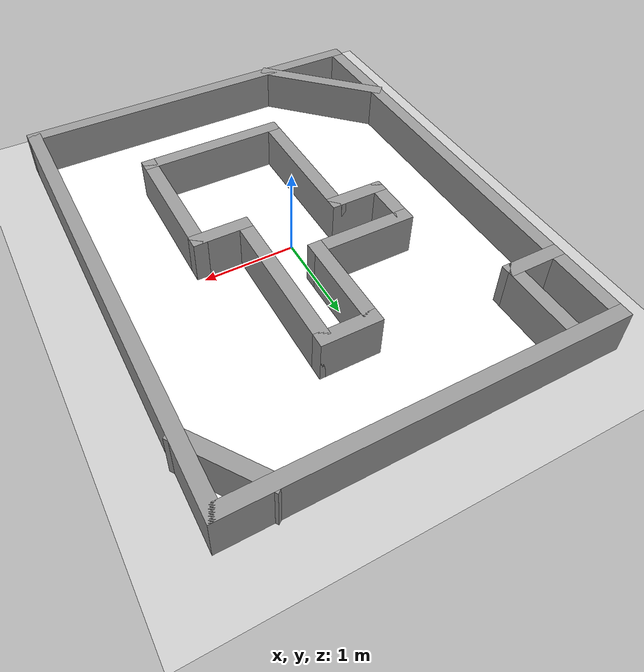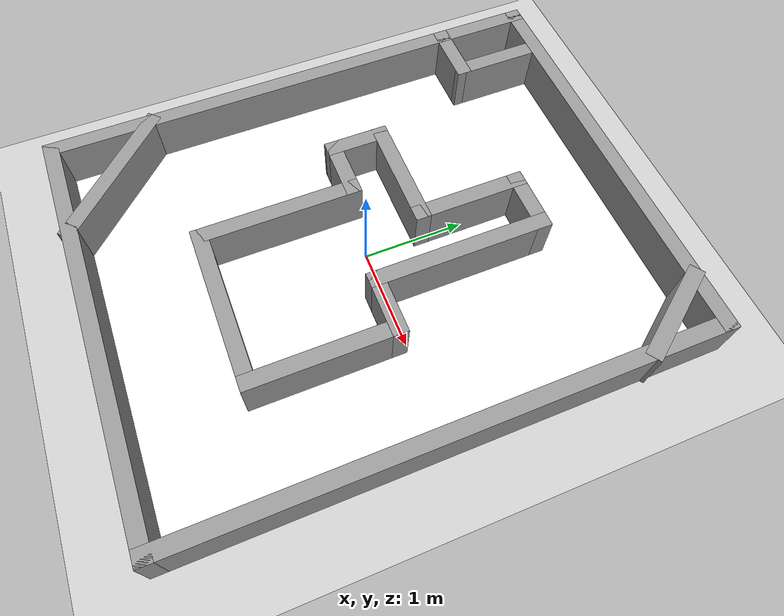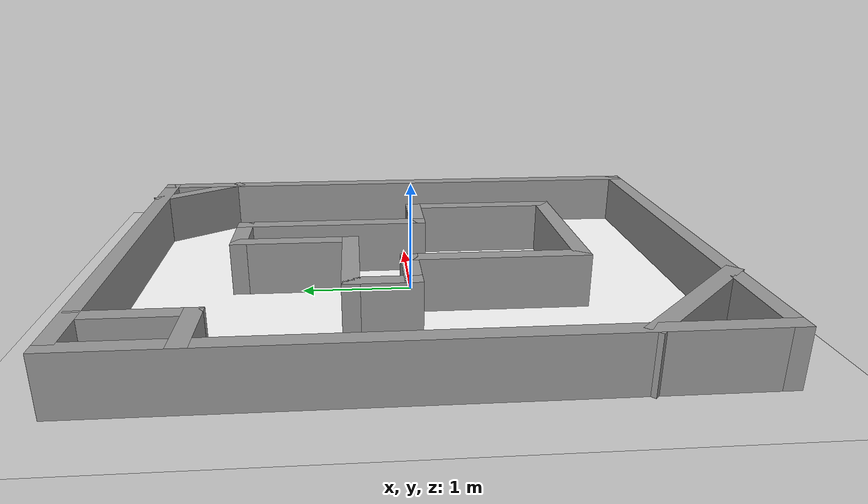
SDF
<?xml version='1.0'?>
<sdf version='1.6'>
  <world name='yaofang_world'>
    <include>
      <uri>model://sun</uri>
    </include>

    <include>
      <uri>model://ground_plane</uri>
    </include>

    <scene>
      <shadows>false</shadows>
      <ambient>0.8 0.8 0.8 1</ambient>
      <background>0.85 0.85 0.85 1</background>
    </scene>

    <physics type='ode'>
      <max_step_size>0.001</max_step_size>
      <real_time_update_rate>500.0</real_time_update_rate>
    </physics>

    <include>
      <uri>model://yaofang</uri>
      <pose>0 0 0 0 0 0</pose>
    </include>
  </world>
</sdf>

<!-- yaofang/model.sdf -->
<sdf version='1.7'>
  <model name='yaofang'>
    <pose>1.99923 2.54773 0 0 -0 0</pose>
    <link name='Wall_0'>
      <collision name='Wall_0_Collision'>
        <geometry>
          <box>
            <size>4.15 0.15 0.5</size>
          </box>
        </geometry>
        <pose>0 0 0.25 0 -0 0</pose>
      </collision>
      <visual name='Wall_0_Visual'>
        <pose>0 0 0.25 0 -0 0</pose>
        <geometry>
          <box>
            <size>4.15 0.15 0.5</size>
          </box>
        </geometry>
        <material>
          <script>
            <uri>file://media/materials/scripts/gazebo.material</uri>
            <name>Gazebo/Grey</name>
          </script>
          <ambient>1 1 1 1</ambient>
        </material>
        <meta>
          <layer>0</layer>
        </meta>
      </visual>
      <pose>0.000769 2.55227 0 0 -0 0</pose>
    </link>
    <link name='Wall_1'>
      <collision name='Wall_1_Collision'>
        <geometry>
          <box>
            <size>5.25 0.15 0.5</size>
          </box>
        </geometry>
        <pose>0 0 0.25 0 -0 0</pose>
      </collision>
      <visual name='Wall_1_Visual'>
        <pose>0 0 0.25 0 -0 0</pose>
        <geometry>
          <box>
            <size>5.25 0.15 0.5</size>
          </box>
        </geometry>
        <material>
          <script>
            <uri>file://media/materials/scripts/gazebo.material</uri>
            <name>Gazebo/Grey</name>
          </script>
          <ambient>1 1 1 1</ambient>
        </material>
        <meta>
          <layer>0</layer>
        </meta>
      </visual>
      <pose>2.00077 0.002269 0 0 -0 -1.5708</pose>
    </link>
    <link name='Wall_10'>
      <collision name='Wall_10_Collision'>
        <geometry>
          <box>
            <size>1 0.15 0.5</size>
          </box>
        </geometry>
        <pose>0 0 0.25 0 -0 0</pose>
      </collision>
      <visual name='Wall_10_Visual'>
        <pose>0 0 0.25 0 -0 0</pose>
        <geometry>
          <box>
            <size>1 0.15 0.5</size>
          </box>
        </geometry>
        <material>
          <script>
            <uri>file://media/materials/scripts/gazebo.material</uri>
            <name>Gazebo/Grey</name>
          </script>
          <ambient>1 1 1 1</ambient>
        </material>
        <meta>
          <layer>0</layer>
        </meta>
      </visual>
      <pose>-1.49916 2.10427 0 0 -0 -1.57097</pose>
    </link>
    <link name='Wall_11'>
      <collision name='Wall_11_Collision'>
        <geometry>
          <box>
            <size>0.65 0.15 0.5</size>
          </box>
        </geometry>
        <pose>0 0 0.25 0 -0 0</pose>
      </collision>
      <visual name='Wall_11_Visual'>
        <pose>0 0 0.25 0 -0 0</pose>
        <geometry>
          <box>
            <size>0.65 0.15 0.5</size>
          </box>
        </geometry>
        <material>
          <script>
            <uri>file://media/materials/scripts/gazebo.material</uri>
            <name>Gazebo/Grey</name>
          </script>
          <ambient>1 1 1 1</ambient>
        </material>
        <meta>
          <layer>0</layer>
        </meta>
      </visual>
      <pose>-1.74923 1.67927 0 0 -0 3.14159</pose>
    </link>
    <link name='Wall_13'>
      <collision name='Wall_13_Collision'>
        <geometry>
          <box>
            <size>1.65 0.15 0.5</size>
          </box>
        </geometry>
        <pose>0 0 0.25 0 -0 0</pose>
      </collision>
      <visual name='Wall_13_Visual'>
        <pose>0 0 0.25 0 -0 0</pose>
        <geometry>
          <box>
            <size>1.65 0.15 0.5</size>
          </box>
        </geometry>
        <material>
          <script>
            <uri>file://media/materials/scripts/gazebo.material</uri>
            <name>Gazebo/Grey</name>
          </script>
          <ambient>1 1 1 1</ambient>
        </material>
        <meta>
          <layer>0</layer>
        </meta>
      </visual>
      <pose>0.250769 -1.44773 0 0 -0 0</pose>
    </link>
    <link name='Wall_14'>
      <collision name='Wall_14_Collision'>
        <geometry>
          <box>
            <size>1.50015 0.15 0.5</size>
          </box>
        </geometry>
        <pose>0 0 0.25 0 -0 0</pose>
      </collision>
      <visual name='Wall_14_Visual'>
        <pose>0 0 0.25 0 -0 0</pose>
        <geometry>
          <box>
            <size>1.50015 0.15 0.5</size>
          </box>
        </geometry>
        <material>
          <script>
            <uri>file://media/materials/scripts/gazebo.material</uri>
            <name>Gazebo/Grey</name>
          </script>
          <ambient>1 1 1 1</ambient>
        </material>
        <meta>
          <layer>0</layer>
        </meta>
      </visual>
      <pose>1.00077 -0.772731 0 0 -0 1.5708</pose>
    </link>
    <link name='Wall_15'>
      <collision name='Wall_15_Collision'>
        <geometry>
          <box>
            <size>0.65 0.15 0.5</size>
          </box>
        </geometry>
        <pose>0 0 0.25 0 -0 0</pose>
      </collision>
      <visual name='Wall_15_Visual'>
        <pose>0 0 0.25 0 -0 0</pose>
        <geometry>
          <box>
            <size>0.65 0.15 0.5</size>
          </box>
        </geometry>
        <material>
          <script>
            <uri>file://media/materials/scripts/gazebo.material</uri>
            <name>Gazebo/Grey</name>
          </script>
          <ambient>1 1 1 1</ambient>
        </material>
        <meta>
          <layer>0</layer>
        </meta>
      </visual>
      <pose>0.750769 -0.097731 0 0 -0 3.14159</pose>
    </link>
    <link name='Wall_16'>
      <collision name='Wall_16_Collision'>
        <geometry>
          <box>
            <size>1.8 0.15 0.5</size>
          </box>
        </geometry>
        <pose>0 0 0.25 0 -0 0</pose>
      </collision>
      <visual name='Wall_16_Visual'>
        <pose>0 0 0.25 0 -0 0</pose>
        <geometry>
          <box>
            <size>1.8 0.15 0.5</size>
          </box>
        </geometry>
        <material>
          <script>
            <uri>file://media/materials/scripts/gazebo.material</uri>
            <name>Gazebo/Grey</name>
          </script>
          <ambient>1 1 1 1</ambient>
        </material>
        <meta>
          <layer>0</layer>
        </meta>
      </visual>
      <pose>0.500769 0.727269 0 0 -0 1.5708</pose>
    </link>
    <link name='Wall_17'>
      <collision name='Wall_17_Collision'>
        <geometry>
          <box>
            <size>0.65 0.15 0.5</size>
          </box>
        </geometry>
        <pose>0 0 0.25 0 -0 0</pose>
      </collision>
      <visual name='Wall_17_Visual'>
        <pose>0 0 0.25 0 -0 0</pose>
        <geometry>
          <box>
            <size>0.65 0.15 0.5</size>
          </box>
        </geometry>
        <material>
          <script>
            <uri>file://media/materials/scripts/gazebo.material</uri>
            <name>Gazebo/Grey</name>
          </script>
          <ambient>1 1 1 1</ambient>
        </material>
        <meta>
          <layer>0</layer>
        </meta>
      </visual>
      <pose>0.250769 1.55227 0 0 -0 3.14159</pose>
    </link>
    <link name='Wall_18'>
      <collision name='Wall_18_Collision'>
        <geometry>
          <box>
            <size>1.15 0.15 0.5</size>
          </box>
        </geometry>
        <pose>0 0 0.25 0 -0 0</pose>
      </collision>
      <visual name='Wall_18_Visual'>
        <pose>0 0 0.25 0 -0 0</pose>
        <geometry>
          <box>
            <size>1.15 0.15 0.5</size>
          </box>
        </geometry>
        <material>
          <script>
            <uri>file://media/materials/scripts/gazebo.material</uri>
            <name>Gazebo/Grey</name>
          </script>
          <ambient>1 1 1 1</ambient>
        </material>
        <meta>
          <layer>0</layer>
        </meta>
      </visual>
      <pose>0.000769 1.05227 0 0 -0 -1.5708</pose>
    </link>
    <link name='Wall_19'>
      <collision name='Wall_19_Collision'>
        <geometry>
          <box>
            <size>1.15 0.15 0.5</size>
          </box>
        </geometry>
        <pose>0 0 0.25 0 -0 0</pose>
      </collision>
      <visual name='Wall_19_Visual'>
        <pose>0 0 0.25 0 -0 0</pose>
        <geometry>
          <box>
            <size>1.15 0.15 0.5</size>
          </box>
        </geometry>
        <material>
          <script>
            <uri>file://media/materials/scripts/gazebo.material</uri>
            <name>Gazebo/Grey</name>
          </script>
          <ambient>1 1 1 1</ambient>
        </material>
        <meta>
          <layer>0</layer>
        </meta>
      </visual>
      <pose>-0.499231 0.552269 0 0 -0 3.14159</pose>
    </link>
    <link name='Wall_2'>
      <collision name='Wall_2_Collision'>
        <geometry>
          <box>
            <size>4.15 0.15 0.5</size>
          </box>
        </geometry>
        <pose>0 0 0.25 0 -0 0</pose>
      </collision>
      <visual name='Wall_2_Visual'>
        <pose>0 0 0.25 0 -0 0</pose>
        <geometry>
          <box>
            <size>4.15 0.15 0.5</size>
          </box>
        </geometry>
        <material>
          <script>
            <uri>file://media/materials/scripts/gazebo.material</uri>
            <name>Gazebo/Grey</name>
          </script>
          <ambient>1 1 1 1</ambient>
        </material>
        <meta>
          <layer>0</layer>
        </meta>
      </visual>
      <pose>0.000769 -2.54773 0 0 -0 3.14159</pose>
    </link>
    <link name='Wall_20'>
      <collision name='Wall_20_Collision'>
        <geometry>
          <box>
            <size>0.65 0.15 0.5</size>
          </box>
        </geometry>
        <pose>0 0 0.25 0 -0 0</pose>
      </collision>
      <visual name='Wall_20_Visual'>
        <pose>0 0 0.25 0 -0 0</pose>
        <geometry>
          <box>
            <size>0.65 0.15 0.5</size>
          </box>
        </geometry>
        <material>
          <script>
            <uri>file://media/materials/scripts/gazebo.material</uri>
            <name>Gazebo/Grey</name>
          </script>
          <ambient>1 1 1 1</ambient>
        </material>
        <meta>
          <layer>0</layer>
        </meta>
      </visual>
      <pose>-0.999231 0.302269 0 0 -0 -1.5708</pose>
    </link>
    <link name='Wall_21'>
      <collision name='Wall_21_Collision'>
        <geometry>
          <box>
            <size>0.65 0.15 0.5</size>
          </box>
        </geometry>
        <pose>0 0 0.25 0 -0 0</pose>
      </collision>
      <visual name='Wall_21_Visual'>
        <pose>0 0 0.25 0 -0 0</pose>
        <geometry>
          <box>
            <size>0.65 0.15 0.5</size>
          </box>
        </geometry>
        <material>
          <script>
            <uri>file://media/materials/scripts/gazebo.material</uri>
            <name>Gazebo/Grey</name>
          </script>
          <ambient>1 1 1 1</ambient>
        </material>
        <meta>
          <layer>0</layer>
        </meta>
      </visual>
      <pose>-0.749231 0.052269 0 0 -0 0</pose>
    </link>
    <link name='Wall_22'>
      <collision name='Wall_22_Collision'>
        <geometry>
          <box>
            <size>1.65 0.15 0.5</size>
          </box>
        </geometry>
        <pose>0 0 0.25 0 -0 0</pose>
      </collision>
      <visual name='Wall_22_Visual'>
        <pose>0 0 0.25 0 -0 0</pose>
        <geometry>
          <box>
            <size>1.65 0.15 0.5</size>
          </box>
        </geometry>
        <material>
          <script>
            <uri>file://media/materials/scripts/gazebo.material</uri>
            <name>Gazebo/Grey</name>
          </script>
          <ambient>1 1 1 1</ambient>
        </material>
        <meta>
          <layer>0</layer>
        </meta>
      </visual>
      <pose>-0.499231 -0.697731 0 0 -0 -1.5708</pose>
    </link>
    <link name='Wall_3'>
      <collision name='Wall_3_Collision'>
        <geometry>
          <box>
            <size>5.25 0.15 0.5</size>
          </box>
        </geometry>
        <pose>0 0 0.25 0 -0 0</pose>
      </collision>
      <visual name='Wall_3_Visual'>
        <pose>0 0 0.25 0 -0 0</pose>
        <geometry>
          <box>
            <size>5.25 0.15 0.5</size>
          </box>
        </geometry>
        <material>
          <script>
            <uri>file://media/materials/scripts/gazebo.material</uri>
            <name>Gazebo/Grey</name>
          </script>
          <ambient>1 1 1 1</ambient>
        </material>
        <meta>
          <layer>0</layer>
        </meta>
      </visual>
      <pose>-1.99923 0.002269 0 0 -0 1.5708</pose>
    </link>
    <link name='Wall_6'>
      <collision name='Wall_6_Collision'>
        <geometry>
          <box>
            <size>1.56421 0.15 0.5</size>
          </box>
        </geometry>
        <pose>0 0 0.25 0 -0 0</pose>
      </collision>
      <visual name='Wall_6_Visual'>
        <pose>0 0 0.25 0 -0 0</pose>
        <geometry>
          <box>
            <size>1.56421 0.15 0.5</size>
          </box>
        </geometry>
        <material>
          <script>
            <uri>file://media/materials/scripts/gazebo.material</uri>
            <name>Gazebo/Grey</name>
          </script>
          <ambient>1 1 1 1</ambient>
        </material>
        <meta>
          <layer>0</layer>
        </meta>
      </visual>
      <pose>-1.49923 -2.04773 0 0 -0 -0.785398</pose>
    </link>
    <link name='Wall_8'>
      <collision name='Wall_8_Collision'>
        <geometry>
          <box>
            <size>1.01676 0.15 0.5</size>
          </box>
        </geometry>
        <pose>0 0 0.25 0 -0 0</pose>
      </collision>
      <visual name='Wall_8_Visual'>
        <pose>0 0 0.25 0 -0 0</pose>
        <geometry>
          <box>
            <size>1.01676 0.15 0.5</size>
          </box>
        </geometry>
        <material>
          <script>
            <uri>file://media/materials/scripts/gazebo.material</uri>
            <name>Gazebo/Grey</name>
          </script>
          <ambient>1 1 1 1</ambient>
        </material>
        <meta>
          <layer>0</layer>
        </meta>
      </visual>
      <pose>1.75077 2.19527 0 0 -0 -0.955912</pose>
    </link>
    <link name='Floor_0'>
      <collision name='Floor_0_Collision'>
        <geometry>
          <box>
            <size>4.0106 5.1076 0.02</size>
          </box>
        </geometry>
        <pose>0 0 0.01 0 -0 0</pose>
      </collision>
      <visual name='Floor_0_Visual'>
        <pose>0 0 0.01 0 -0 0</pose>
        <geometry>
          <box>
            <size>4.0106 5.1076 0.02</size>
          </box>
        </geometry>
        <material>
          <script>
            <uri>model://yaofang/materials/scripts</uri>
            <uri>model://yaofang/materials/textures</uri>
            <name>yaofang/Floor</name>
          </script>
          <ambient>1 1 1 1</ambient>
        </material>
        <meta>
          <layer>0</layer>
        </meta>
      </visual>
      <pose>0.000769 0.000000 0 0 -0 0</pose>
    </link>
    <static>1</static>
  </model>
</sdf>
